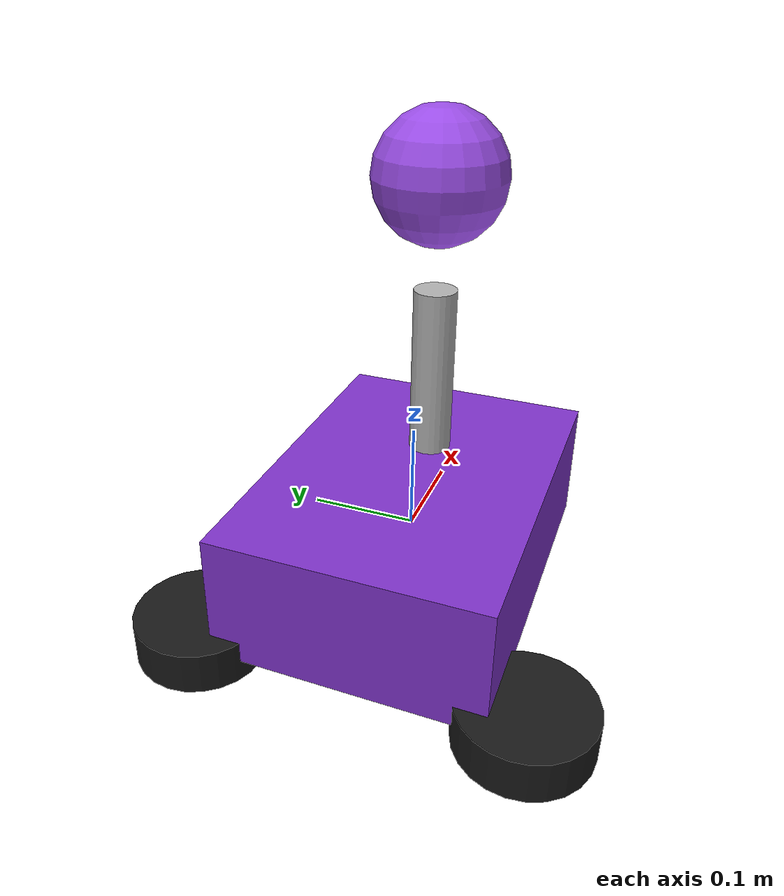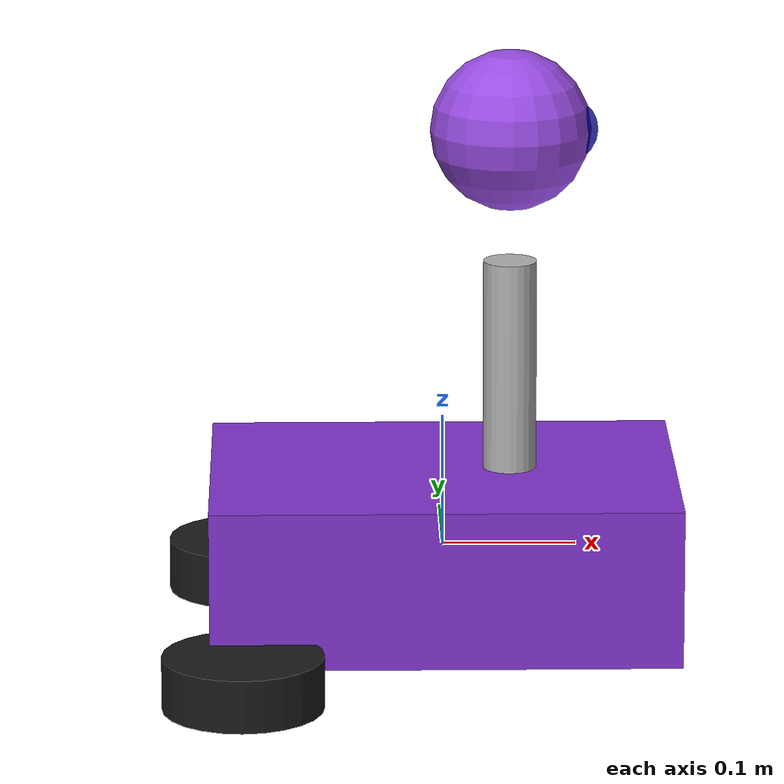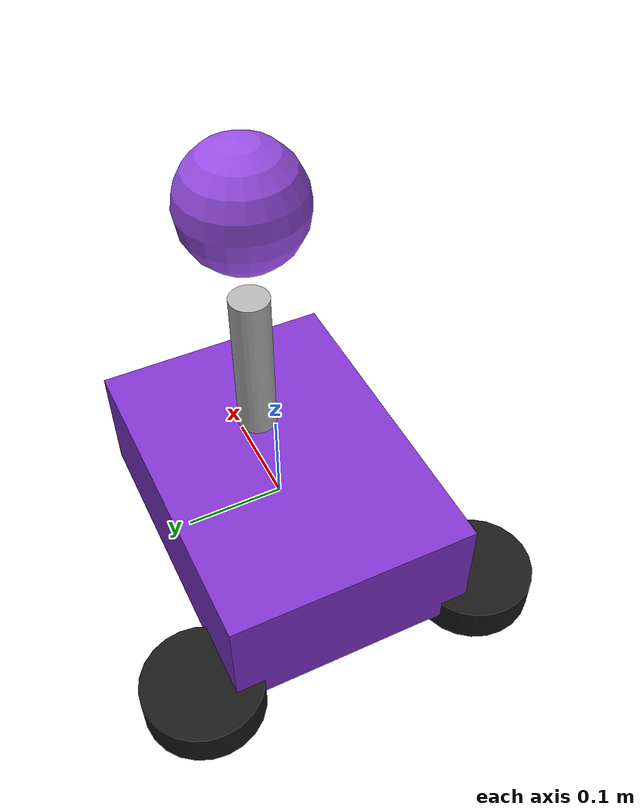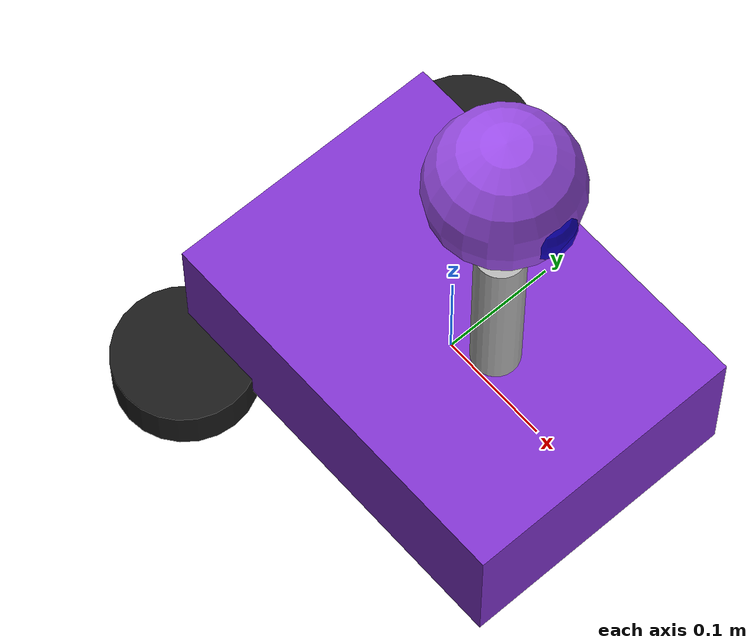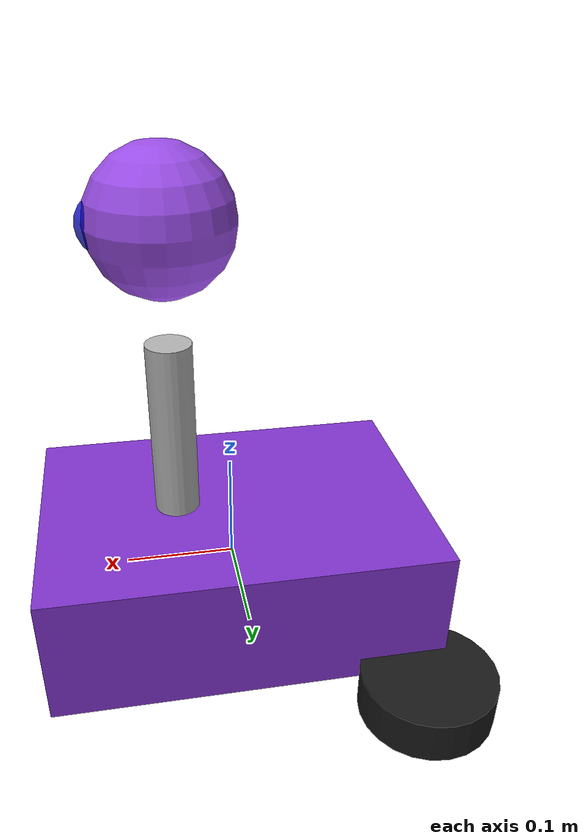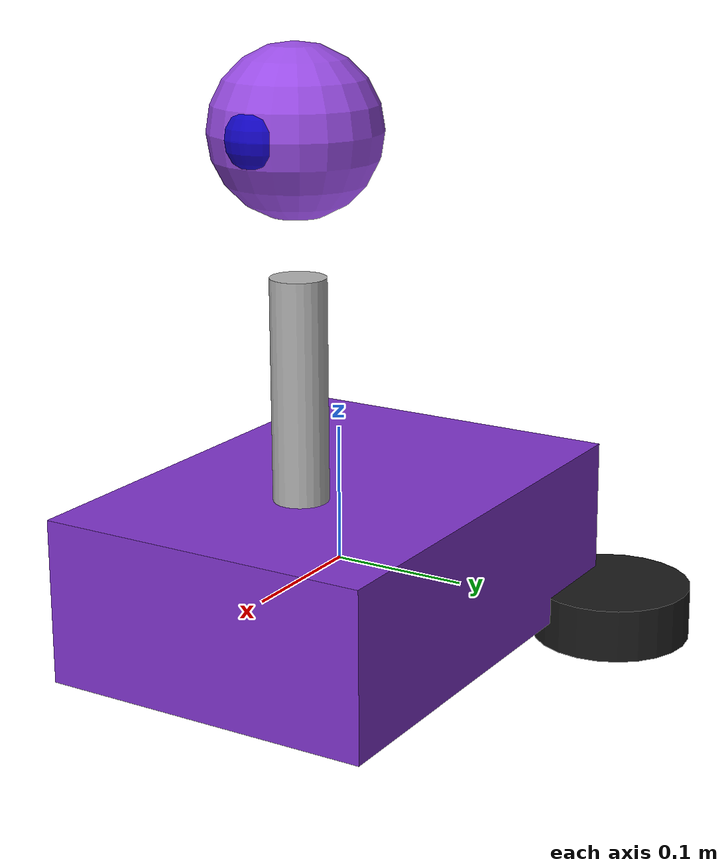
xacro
<?xml version="1.0"?>
<robot name="inspector_robot" xmlns:xacro="http://ros.org/wiki/xacro">
  <!-- Mobile base -->
  <link name="base_link">
    <visual>
      <geometry><box size="0.35 0.25 0.12"/></geometry>
      <material name="purple">
        <color rgba="0.5 0.2 0.8 1.0"/>
      </material>
    </visual>
    <collision>
      <geometry><box size="0.35 0.25 0.12"/></geometry>
    </collision>
    <inertial>
      <mass value="18.0"/>
      <inertia ixx="0.15" ixy="0.0" ixz="0.0" iyy="0.15" iyz="0.0" izz="0.1"/>
    </inertial>
  </link>

  <!-- Wheels (visual only) -->
  <joint name="left_wheel_joint" type="fixed">
    <parent link="base_link"/>
    <child link="left_wheel"/>
    <origin xyz="-0.15 -0.15 -0.06"/>
  </joint>
  <link name="left_wheel">
    <visual>
      <geometry><cylinder radius="0.06" length="0.04"/></geometry>
      <material name="black">
        <color rgba="0.1 0.1 0.1 1.0"/>
      </material>
    </visual>
  </link>

  <joint name="right_wheel_joint" type="fixed">
    <parent link="base_link"/>
    <child link="right_wheel"/>
    <origin xyz="-0.15 0.15 -0.06"/>
  </joint>
  <link name="right_wheel">
    <visual>
      <geometry><cylinder radius="0.06" length="0.04"/></geometry>
      <material name="black">
        <color rgba="0.1 0.1 0.1 1.0"/>
      </material>
    </visual>
  </link>

  <!-- Sensor mast -->
  <joint name="mast_joint" type="fixed">
    <parent link="base_link"/>
    <child link="mast"/>
    <origin xyz="0.05 0 0.12"/>
  </joint>
  <link name="mast">
    <visual>
      <geometry><cylinder radius="0.02" length="0.2"/></geometry>
      <material name="silver">
        <color rgba="0.7 0.7 0.7 1.0"/>
      </material>
    </visual>
    <inertial>
      <mass value="1.0"/>
      <inertia ixx="0.005" ixy="0.0" ixz="0.0" iyy="0.005" iyz="0.0" izz="0.001"/>
    </inertial>
  </link>

  <!-- Camera head -->
  <joint name="head_joint" type="revolute">
    <parent link="mast"/>
    <child link="head"/>
    <origin xyz="0 0 0.2"/>
    <axis xyz="0 0 1"/>
    <limit effort="50" velocity="1.0" lower="-3.14" upper="3.14"/>
  </joint>
  <link name="head">
    <visual>
      <geometry><sphere radius="0.06"/></geometry>
      <material name="purple_light">
        <color rgba="0.6 0.3 0.9 1.0"/>
      </material>
    </visual>
    <inertial>
      <mass value="1.5"/>
      <inertia ixx="0.005" ixy="0.0" ixz="0.0" iyy="0.005" iyz="0.0" izz="0.005"/>
    </inertial>
  </link>

  <!-- Camera lens -->
  <joint name="camera_joint" type="fixed">
    <parent link="head"/>
    <child link="camera_lens"/>
    <origin xyz="0.04 0 0"/>
  </joint>
  <link name="camera_lens">
    <visual>
      <geometry><sphere radius="0.025"/></geometry>
      <material name="lens">
        <color rgba="0.0 0.0 0.8 0.8"/>
      </material>
    </visual>
  </link>
</robot>
